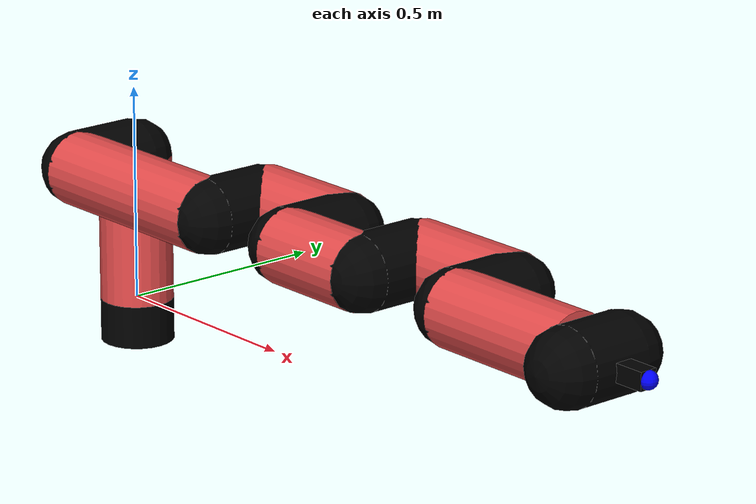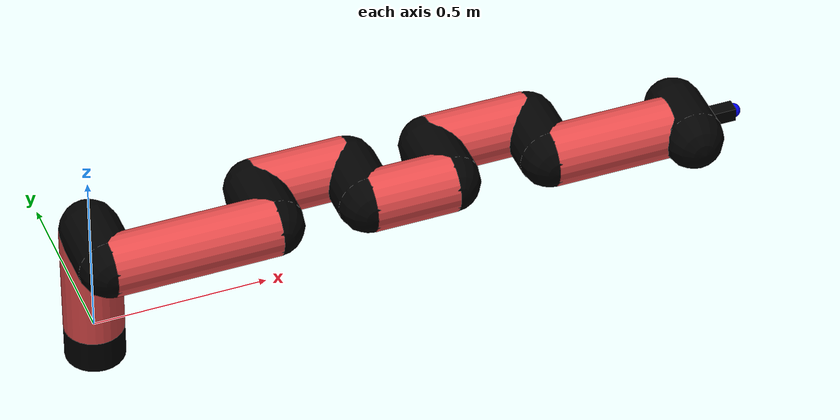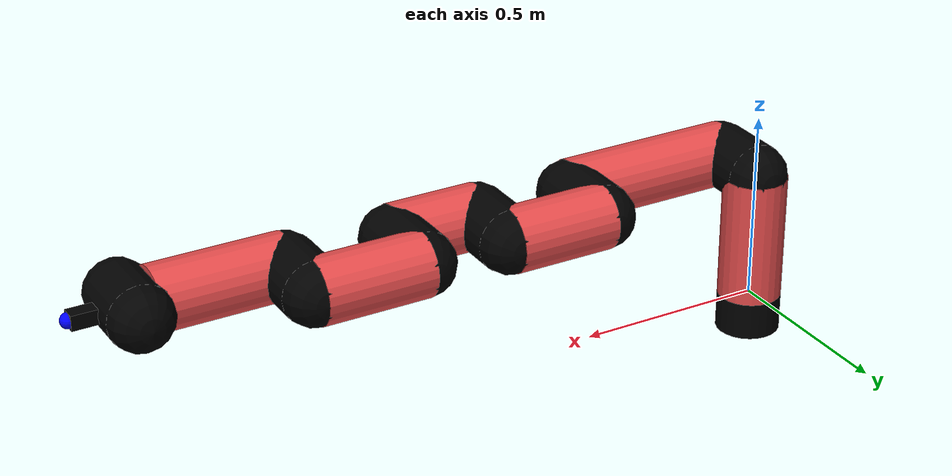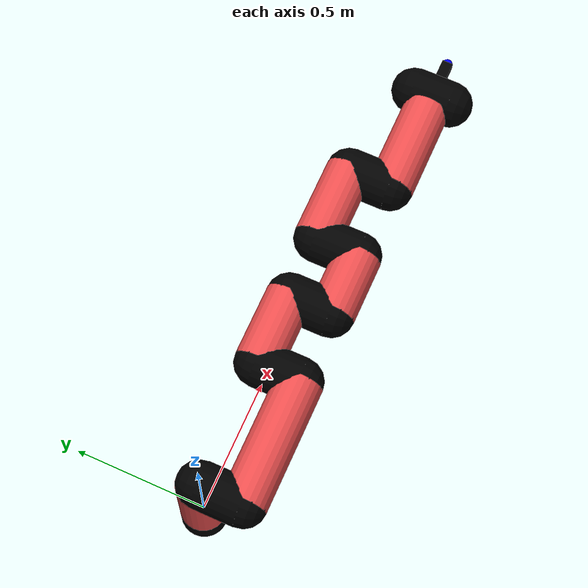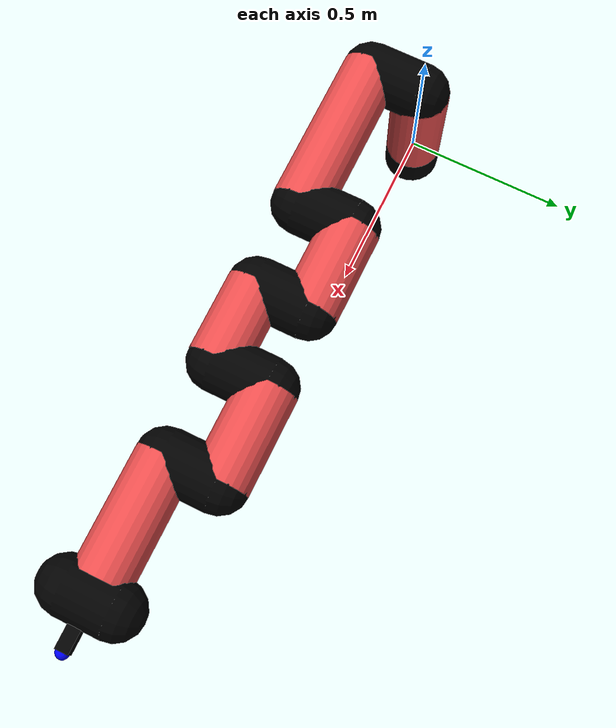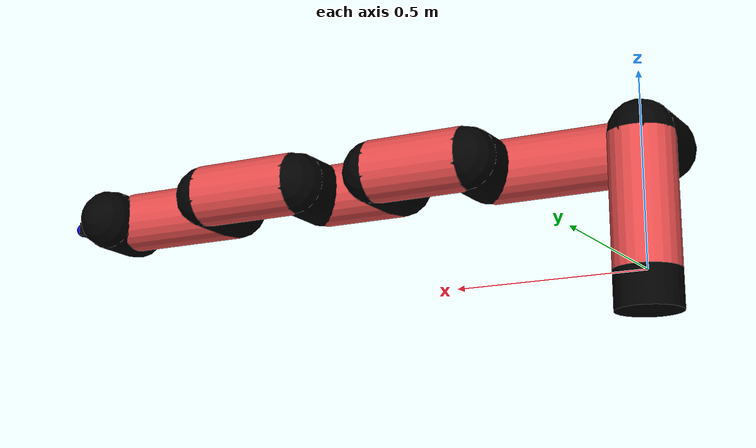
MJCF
<mujoco model="manipulator">
		<compiler angle="degree" coordinate="local" inertiafromgeom="auto" meshdir="meshes/"/>
		<option gravity="0 0 0" integrator="RK4" iterations="30" timestep="0.01"/>

		<default>
		<joint armature="1" limited="true" stiffness="10" damping="15" frictionloss="5.0"/>
		<geom conaffinity="1" condim="3" contype="1" friction=".5 .1 .1" margin="0.002"/>
		<motor ctrllimited="true"/>
		<position ctrllimited="true"/>
		</default>

		<asset>
		<texture builtin="gradient" height="100" rgb1="1.0 1.0 1.0" rgb2="1.0 1.0 1.0" type="skybox" width="100"/>
		<texture builtin="flat" height="32" name="arm_tex" rgb1="0.9 0.3 0.3" type="2d" width="32"/>
		<texture builtin="flat" height="32" name="gripper_tex" rgb1="0.0 0.0 0.0" type="cube" width="32"/>

		<material name="arm_mat" shininess="0.1" specular="0.1" texture="arm_tex"/>
		<material name="gripper_mat" shininess="1" specular="1" texture="gripper_tex"/>
		</asset>

		<worldbody>
		<light cutoff="45" diffuse=".8 .8 .8" dir="0 0.16 -1" directional="false" name="light" pos="0 -2.0 8.0" specular="0.3 0.3 0.3"/>

		<body name="base_link" pos="0 0 -0.1">
		<geom fromto="0 0 0 0 0 0.1" material="arm_mat" name="base_link" rgba="0.0 0.0 0.0 1" size="0.085" type="cylinder"/>
		</body>

		<body name="l1" pos="0 0 0">
<geom fromto="0 0 0 0 0 0.34" material="arm_mat" name="l1" rgba="0.9 0.3 0.3 1" size="0.085" type="cylinder"/>
<geom fromto="0 0 0.34 0 -0.16 0.34" material="arm_mat" name="l1_ex" rgba="0.0 0.0 0.0 1" size="0.085" type="capsule"/>
<joint axis="0 0 1" name="j1" pos="0 0 0" range="-90 90" damping="34.49" frictionloss="10.92"/>

<body name="l2" pos="0 -0.16 0.34">
<geom fromto="0 0 0 0.47 0 0" material="arm_mat" name="l2" rgba="0.9 0.3 0.3 1" size="0.085" type="cylinder"/>
<geom fromto="0.47 0 0 0.47 0.16 0" material="arm_mat" name="l2_ex" rgba="0.0 0.0 0.0 1" size="0.085" type="capsule"/>
<joint axis="0.0 1.0 0.0" name="j2" pos="0 0 0" range="-90 60" damping="27.15" frictionloss="9.49"/>

<body name="l3" pos="0.47 0.16 0">
<geom fromto="0 0 0 0.27 0 0" material="arm_mat" name="l3" rgba="0.9 0.3 0.3 1" size="0.085" type="cylinder"/>
<geom fromto="0.27 0 0 0.27 -0.16 0" material="arm_mat" name="l3_ex" rgba="0.0 0.0 0.0 1" size="0.085" type="capsule"/>
<joint axis="0.0 1.0 0.0" name="j3" pos="0 0 0" range="-30 60" damping="35.78" frictionloss="11.0"/>

<body name="l4" pos="0.27 -0.16 0">
<geom fromto="0 0 0 0.24 0 0" material="arm_mat" name="l4" rgba="0.9 0.3 0.3 1" size="0.085" type="cylinder"/>
<geom fromto="0.24 0 0 0.24 0.16 0" material="arm_mat" name="l4_ex" rgba="0.0 0.0 0.0 1" size="0.085" type="capsule"/>
<joint axis="0.0 1.0 0.0" name="j4" pos="0 0 0" range="-30 60" damping="29.67" frictionloss="10.68"/>

<body name="l5" pos="0.24 0.16 0">
<geom fromto="0 0 0 0.29 0 0" material="arm_mat" name="l5" rgba="0.9 0.3 0.3 1" size="0.085" type="cylinder"/>
<geom fromto="0.29 0 0 0.29 -0.16 0" material="arm_mat" name="l5_ex" rgba="0.0 0.0 0.0 1" size="0.085" type="capsule"/>
<joint axis="0.0 1.0 0.0" name="j5" pos="0 0 0" range="-30 60" damping="31.16" frictionloss="10.53"/>

<body name="l6" pos="0.29 -0.16 0">
<geom fromto="0 0 0 0.35 0 0" material="arm_mat" name="l6" rgba="0.9 0.3 0.3 1" size="0.085" type="cylinder"/>
<joint axis="0.0 1.0 0.0" name="j6" pos="0 0 0" range="-30 60" damping="27.67" frictionloss="8.16"/>

<body name="gripper" pos="0.35 0 0">
<geom fromto="0.05 -0.07 0 0.05 0.07 0" material="gripper_mat" name="gripper" rgba="0.0 0.0 0.0 1" size="0.085" type="capsule"/><joint axis="1 0 0" name="j7" pos="0 0 0" range="-90 90" damping="15" frictionloss="5.0"/><body name="finger" pos="0.1 0 0">
<geom fromto="0 0.0 0 0.1 0.0 0" material="gripper_mat" name="finger" rgba="0.0 0.0 0.0 1" size="0.020 0.06 0.06" type="box"/>
</body>
<site name="current" pos="0.2 0. 0.0" rgba="0. 0. 1.0 1" size="0.02" type="sphere"/>
</body>
</body>
</body>
</body>
</body>
</body>
</body>
</worldbody>
<actuator>
<motor ctrllimited="true" ctrlrange="-1.0 1.0" joint="j1" gear="88.93"/>
<motor ctrllimited="true" ctrlrange="-1.0 1.0" joint="j2" gear="77.53"/>
<motor ctrllimited="true" ctrlrange="-1.0 1.0" joint="j3" gear="66.06"/>
<motor ctrllimited="true" ctrlrange="-1.0 1.0" joint="j4" gear="87.76"/>
<motor ctrllimited="true" ctrlrange="-1.0 1.0" joint="j5" gear="71.77"/>
<motor ctrllimited="true" ctrlrange="-1.0 1.0" joint="j6" gear="65.8"/>
<motor ctrllimited="true" ctrlrange="-1.0 1.0" joint="j7" gear="80"/>
</actuator>
</mujoco>
